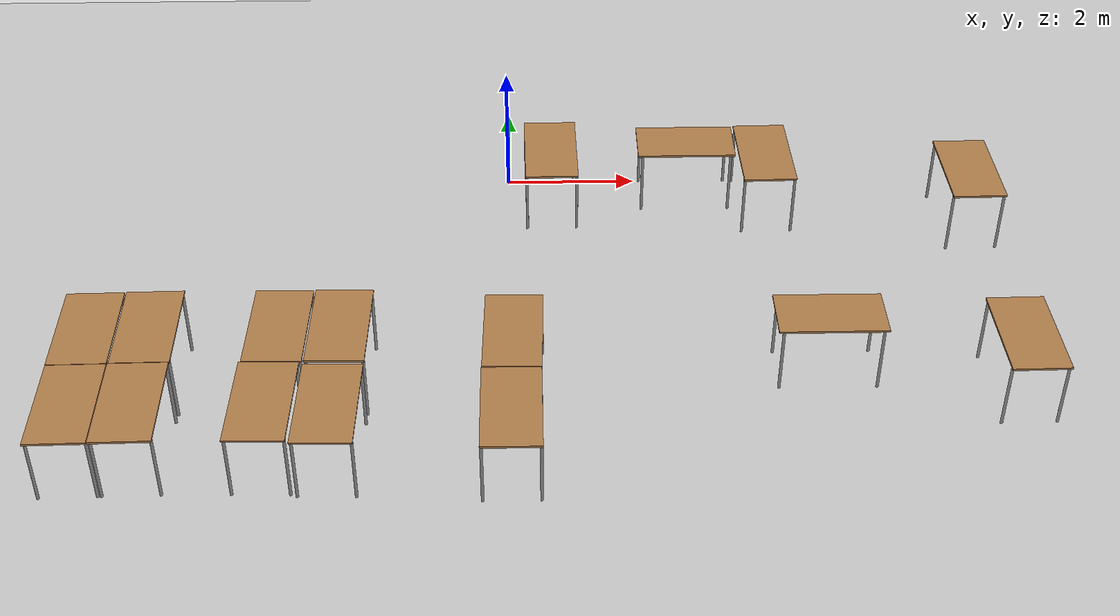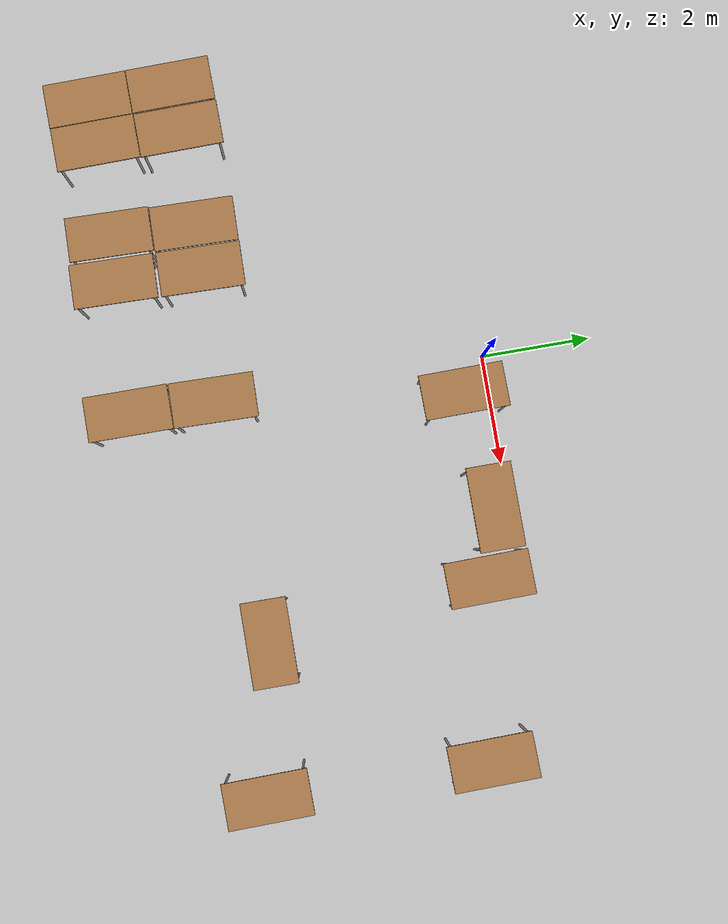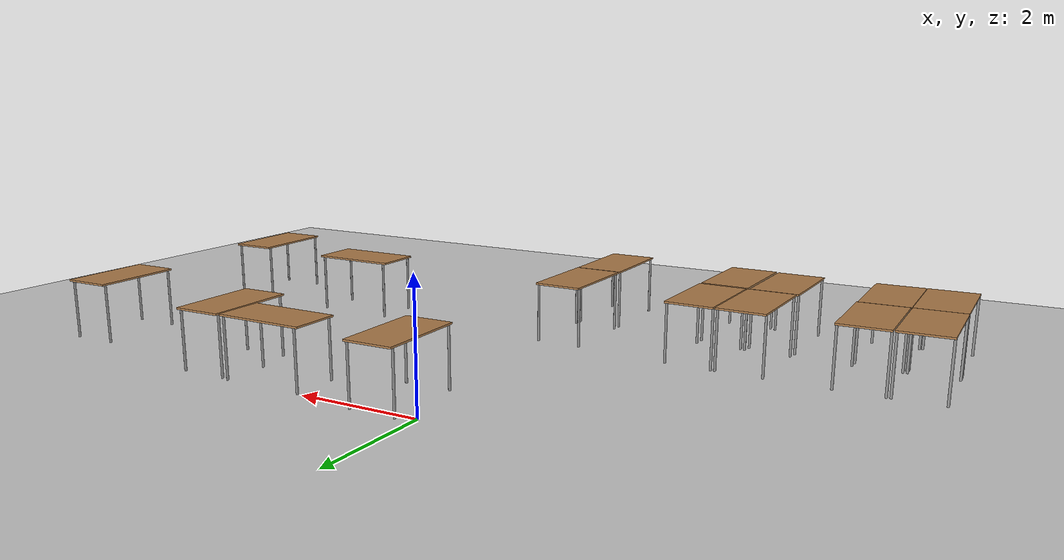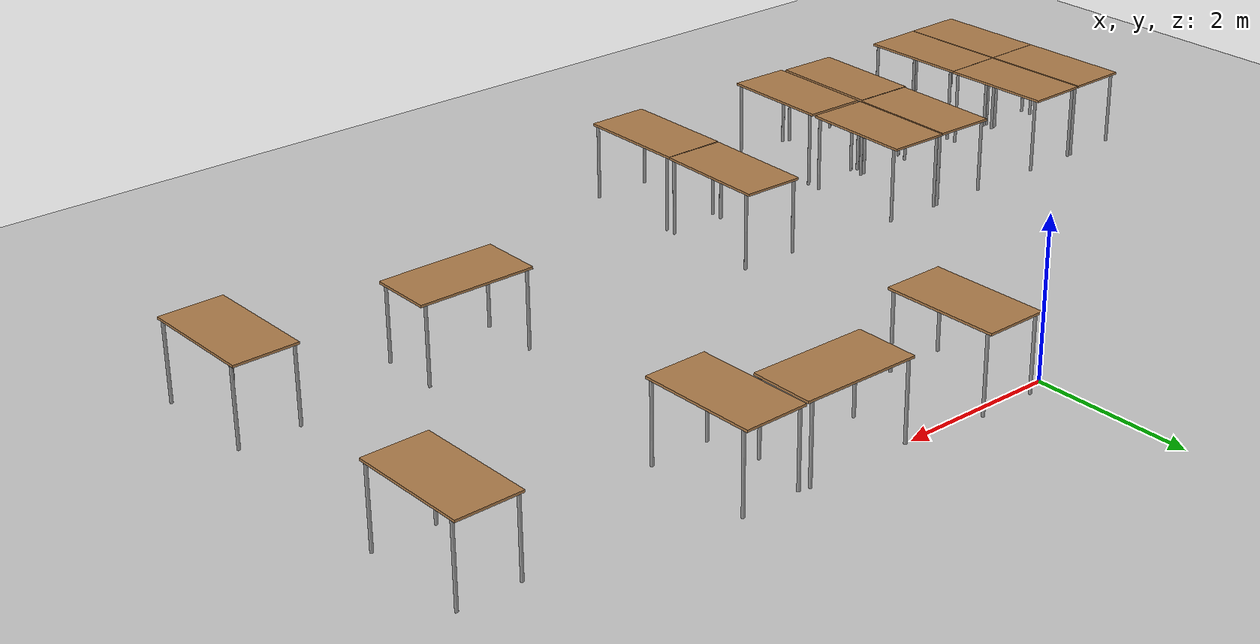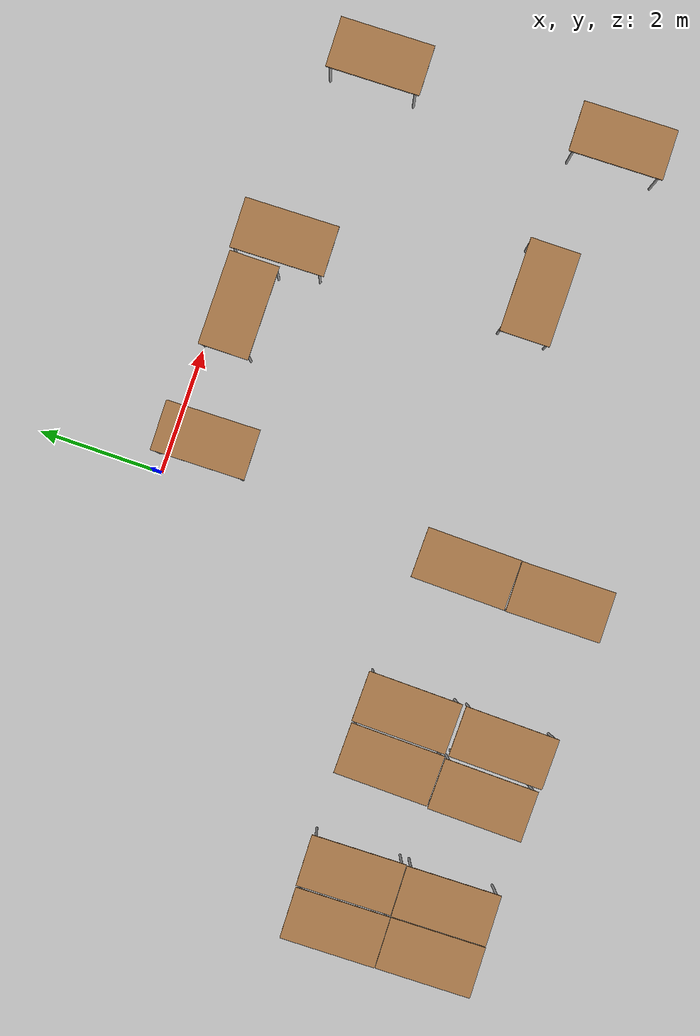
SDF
<sdf version="1.7">
 <world name="default">
  <model name="ground_plane">
   <static>1</static>
   <link name="link">
    <collision name="collision">
     <geometry><plane><normal>0 0 1</normal><size>100 100</size></plane></geometry>
     <surface>
      <contact><collide_bitmask>65535</collide_bitmask></contact>
      <friction><ode><mu>100</mu><mu2>50</mu2></ode></friction>
     </surface>
    </collision>
    <visual name="visual">
     <cast_shadows>0</cast_shadows>
     <geometry><plane><normal>0 0 1</normal><size>100 100</size></plane></geometry>
     <material>
      <script><uri>file://media/materials/scripts/gazebo.material</uri><name>Gazebo/Grey</name></script>
     </material>
    </visual>
   </link>
  </model>
  <model name="table">
   <static>1</static>
   <link name="link">
    <collision name="surface">
     <pose>0 0 1 0 -0 0</pose>
     <geometry><box><size>1.5 0.8 0.03</size></box></geometry>
     <surface><friction><ode><mu>0.6</mu><mu2>0.6</mu2></ode></friction></surface>
    </collision>
    <visual name="visual1">
     <pose>0 0 1 0 -0 0</pose>
     <geometry><box><size>1.5 0.8 0.03</size></box></geometry>
     <material>
      <script><uri>file://media/materials/scripts/gazebo.material</uri><name>Gazebo/Wood</name></script>
     </material>
    </visual>
    <collision name="front_left_leg">
     <pose>0.68 0.38 0.5 0 -0 0</pose>
     <geometry><cylinder><radius>0.02</radius><length>1</length></cylinder></geometry>
    </collision>
    <visual name="front_left_leg">
     <pose>0.68 0.38 0.5 0 -0 0</pose>
     <geometry><cylinder><radius>0.02</radius><length>1</length></cylinder></geometry>
     <material>
      <script><uri>file://media/materials/scripts/gazebo.material</uri><name>Gazebo/Grey</name></script>
     </material>
    </visual>
    <collision name="front_right_leg">
     <pose>0.68 -0.38 0.5 0 -0 0</pose>
     <geometry><cylinder><radius>0.02</radius><length>1</length></cylinder></geometry>
    </collision>
    <visual name="front_right_leg">
     <pose>0.68 -0.38 0.5 0 -0 0</pose>
     <geometry><cylinder><radius>0.02</radius><length>1</length></cylinder></geometry>
     <material>
      <script><uri>file://media/materials/scripts/gazebo.material</uri><name>Gazebo/Grey</name></script>
     </material>
    </visual>
    <collision name="back_right_leg">
     <pose>-0.68 -0.38 0.5 0 -0 0</pose>
     <geometry><cylinder><radius>0.02</radius><length>1</length></cylinder></geometry>
    </collision>
    <visual name="back_right_leg">
     <pose>-0.68 -0.38 0.5 0 -0 0</pose>
     <geometry><cylinder><radius>0.02</radius><length>1</length></cylinder></geometry>
     <material>
      <script><uri>file://media/materials/scripts/gazebo.material</uri><name>Gazebo/Grey</name></script>
     </material>
    </visual>
    <collision name="back_left_leg">
     <pose>-0.68 0.38 0.5 0 -0 0</pose>
     <geometry><cylinder><radius>0.02</radius><length>1</length></cylinder></geometry>
    </collision>
    <visual name="back_left_leg">
     <pose>-0.68 0.38 0.5 0 -0 0</pose>
     <geometry><cylinder><radius>0.02</radius><length>1</length></cylinder></geometry>
     <material>
      <script><uri>file://media/materials/scripts/gazebo.material</uri><name>Gazebo/Grey</name></script>
     </material>
    </visual>
   </link>
   <pose>2.7742 -0.37868 0 0 -0 0</pose>
  </model>
  <model name="table_clone_0_clone_6">
   <static>1</static>
   <link name="link">
    <collision name="surface">
     <pose>0 0 1 0 -0 0</pose>
     <geometry><box><size>1.5 0.8 0.03</size></box></geometry>
     <surface><friction><ode><mu>0.6</mu><mu2>0.6</mu2></ode></friction></surface>
    </collision>
    <visual name="visual1">
     <pose>0 0 1 0 -0 0</pose>
     <geometry><box><size>1.5 0.8 0.03</size></box></geometry>
     <material>
      <script><uri>file://media/materials/scripts/gazebo.material</uri><name>Gazebo/Wood</name></script>
     </material>
    </visual>
    <collision name="front_left_leg">
     <pose>0.68 0.38 0.5 0 -0 0</pose>
     <geometry><cylinder><radius>0.02</radius><length>1</length></cylinder></geometry>
    </collision>
    <visual name="front_left_leg">
     <pose>0.68 0.38 0.5 0 -0 0</pose>
     <geometry><cylinder><radius>0.02</radius><length>1</length></cylinder></geometry>
     <material>
      <script><uri>file://media/materials/scripts/gazebo.material</uri><name>Gazebo/Grey</name></script>
     </material>
    </visual>
    <collision name="front_right_leg">
     <pose>0.68 -0.38 0.5 0 -0 0</pose>
     <geometry><cylinder><radius>0.02</radius><length>1</length></cylinder></geometry>
    </collision>
    <visual name="front_right_leg">
     <pose>0.68 -0.38 0.5 0 -0 0</pose>
     <geometry><cylinder><radius>0.02</radius><length>1</length></cylinder></geometry>
     <material>
      <script><uri>file://media/materials/scripts/gazebo.material</uri><name>Gazebo/Grey</name></script>
     </material>
    </visual>
    <collision name="back_right_leg">
     <pose>-0.68 -0.38 0.5 0 -0 0</pose>
     <geometry><cylinder><radius>0.02</radius><length>1</length></cylinder></geometry>
    </collision>
    <visual name="back_right_leg">
     <pose>-0.68 -0.38 0.5 0 -0 0</pose>
     <geometry><cylinder><radius>0.02</radius><length>1</length></cylinder></geometry>
     <material>
      <script><uri>file://media/materials/scripts/gazebo.material</uri><name>Gazebo/Grey</name></script>
     </material>
    </visual>
    <collision name="back_left_leg">
     <pose>-0.68 0.38 0.5 0 -0 0</pose>
     <geometry><cylinder><radius>0.02</radius><length>1</length></cylinder></geometry>
    </collision>
    <visual name="back_left_leg">
     <pose>-0.68 0.38 0.5 0 -0 0</pose>
     <geometry><cylinder><radius>0.02</radius><length>1</length></cylinder></geometry>
     <material>
      <script><uri>file://media/materials/scripts/gazebo.material</uri><name>Gazebo/Grey</name></script>
     </material>
    </visual>
   </link>
   <pose>7.0603 -1.19412 0 0 -0 1.58908</pose>
  </model>
  <model name="table_clone_0_clone_9">
   <static>1</static>
   <link name="link">
    <collision name="surface">
     <pose>0 0 1 0 -0 0</pose>
     <geometry><box><size>1.5 0.8 0.03</size></box></geometry>
     <surface><friction><ode><mu>0.6</mu><mu2>0.6</mu2></ode></friction></surface>
    </collision>
    <visual name="visual1">
     <pose>0 0 1 0 -0 0</pose>
     <geometry><box><size>1.5 0.8 0.03</size></box></geometry>
     <material>
      <script><uri>file://media/materials/scripts/gazebo.material</uri><name>Gazebo/Wood</name></script>
     </material>
    </visual>
    <collision name="front_left_leg">
     <pose>0.68 0.38 0.5 0 -0 0</pose>
     <geometry><cylinder><radius>0.02</radius><length>1</length></cylinder></geometry>
    </collision>
    <visual name="front_left_leg">
     <pose>0.68 0.38 0.5 0 -0 0</pose>
     <geometry><cylinder><radius>0.02</radius><length>1</length></cylinder></geometry>
     <material>
      <script><uri>file://media/materials/scripts/gazebo.material</uri><name>Gazebo/Grey</name></script>
     </material>
    </visual>
    <collision name="front_right_leg">
     <pose>0.68 -0.38 0.5 0 -0 0</pose>
     <geometry><cylinder><radius>0.02</radius><length>1</length></cylinder></geometry>
    </collision>
    <visual name="front_right_leg">
     <pose>0.68 -0.38 0.5 0 -0 0</pose>
     <geometry><cylinder><radius>0.02</radius><length>1</length></cylinder></geometry>
     <material>
      <script><uri>file://media/materials/scripts/gazebo.material</uri><name>Gazebo/Grey</name></script>
     </material>
    </visual>
    <collision name="back_right_leg">
     <pose>-0.68 -0.38 0.5 0 -0 0</pose>
     <geometry><cylinder><radius>0.02</radius><length>1</length></cylinder></geometry>
    </collision>
    <visual name="back_right_leg">
     <pose>-0.68 -0.38 0.5 0 -0 0</pose>
     <geometry><cylinder><radius>0.02</radius><length>1</length></cylinder></geometry>
     <material>
      <script><uri>file://media/materials/scripts/gazebo.material</uri><name>Gazebo/Grey</name></script>
     </material>
    </visual>
    <collision name="back_left_leg">
     <pose>-0.68 0.38 0.5 0 -0 0</pose>
     <geometry><cylinder><radius>0.02</radius><length>1</length></cylinder></geometry>
    </collision>
    <visual name="back_left_leg">
     <pose>-0.68 0.38 0.5 0 -0 0</pose>
     <geometry><cylinder><radius>0.02</radius><length>1</length></cylinder></geometry>
     <material>
      <script><uri>file://media/materials/scripts/gazebo.material</uri><name>Gazebo/Grey</name></script>
     </material>
    </visual>
   </link>
   <pose>7.02703 -5.11024 0 0 -0 1.58908</pose>
  </model>
  <model name="table_clone_0_clone_clone_1">
   <static>1</static>
   <link name="link">
    <collision name="surface">
     <pose>0 0 1 0 -0 0</pose>
     <geometry><box><size>1.5 0.8 0.03</size></box></geometry>
     <surface><friction><ode><mu>0.6</mu><mu2>0.6</mu2></ode></friction></surface>
    </collision>
    <visual name="visual1">
     <pose>0 0 1 0 -0 0</pose>
     <geometry><box><size>1.5 0.8 0.03</size></box></geometry>
     <material>
      <script><uri>file://media/materials/scripts/gazebo.material</uri><name>Gazebo/Wood</name></script>
     </material>
    </visual>
    <collision name="front_left_leg">
     <pose>0.68 0.38 0.5 0 -0 0</pose>
     <geometry><cylinder><radius>0.02</radius><length>1</length></cylinder></geometry>
    </collision>
    <visual name="front_left_leg">
     <pose>0.68 0.38 0.5 0 -0 0</pose>
     <geometry><cylinder><radius>0.02</radius><length>1</length></cylinder></geometry>
     <material>
      <script><uri>file://media/materials/scripts/gazebo.material</uri><name>Gazebo/Grey</name></script>
     </material>
    </visual>
    <collision name="front_right_leg">
     <pose>0.68 -0.38 0.5 0 -0 0</pose>
     <geometry><cylinder><radius>0.02</radius><length>1</length></cylinder></geometry>
    </collision>
    <visual name="front_right_leg">
     <pose>0.68 -0.38 0.5 0 -0 0</pose>
     <geometry><cylinder><radius>0.02</radius><length>1</length></cylinder></geometry>
     <material>
      <script><uri>file://media/materials/scripts/gazebo.material</uri><name>Gazebo/Grey</name></script>
     </material>
    </visual>
    <collision name="back_right_leg">
     <pose>-0.68 -0.38 0.5 0 -0 0</pose>
     <geometry><cylinder><radius>0.02</radius><length>1</length></cylinder></geometry>
    </collision>
    <visual name="back_right_leg">
     <pose>-0.68 -0.38 0.5 0 -0 0</pose>
     <geometry><cylinder><radius>0.02</radius><length>1</length></cylinder></geometry>
     <material>
      <script><uri>file://media/materials/scripts/gazebo.material</uri><name>Gazebo/Grey</name></script>
     </material>
    </visual>
    <collision name="back_left_leg">
     <pose>-0.68 0.38 0.5 0 -0 0</pose>
     <geometry><cylinder><radius>0.02</radius><length>1</length></cylinder></geometry>
    </collision>
    <visual name="back_left_leg">
     <pose>-0.68 0.38 0.5 0 -0 0</pose>
     <geometry><cylinder><radius>0.02</radius><length>1</length></cylinder></geometry>
     <material>
      <script><uri>file://media/materials/scripts/gazebo.material</uri><name>Gazebo/Grey</name></script>
     </material>
    </visual>
   </link>
   <pose>-5.63378 -6.28762 0 0 -0 1.58908</pose>
  </model>
  <model name="table_clone_0_clone_clone_2">
   <static>1</static>
   <link name="link">
    <collision name="surface">
     <pose>0 0 1 0 -0 0</pose>
     <geometry><box><size>1.5 0.8 0.03</size></box></geometry>
     <surface><friction><ode><mu>0.6</mu><mu2>0.6</mu2></ode></friction></surface>
    </collision>
    <visual name="visual1">
     <pose>0 0 1 0 -0 0</pose>
     <geometry><box><size>1.5 0.8 0.03</size></box></geometry>
     <material>
      <script><uri>file://media/materials/scripts/gazebo.material</uri><name>Gazebo/Wood</name></script>
     </material>
    </visual>
    <collision name="front_left_leg">
     <pose>0.68 0.38 0.5 0 -0 0</pose>
     <geometry><cylinder><radius>0.02</radius><length>1</length></cylinder></geometry>
    </collision>
    <visual name="front_left_leg">
     <pose>0.68 0.38 0.5 0 -0 0</pose>
     <geometry><cylinder><radius>0.02</radius><length>1</length></cylinder></geometry>
     <material>
      <script><uri>file://media/materials/scripts/gazebo.material</uri><name>Gazebo/Grey</name></script>
     </material>
    </visual>
    <collision name="front_right_leg">
     <pose>0.68 -0.38 0.5 0 -0 0</pose>
     <geometry><cylinder><radius>0.02</radius><length>1</length></cylinder></geometry>
    </collision>
    <visual name="front_right_leg">
     <pose>0.68 -0.38 0.5 0 -0 0</pose>
     <geometry><cylinder><radius>0.02</radius><length>1</length></cylinder></geometry>
     <material>
      <script><uri>file://media/materials/scripts/gazebo.material</uri><name>Gazebo/Grey</name></script>
     </material>
    </visual>
    <collision name="back_right_leg">
     <pose>-0.68 -0.38 0.5 0 -0 0</pose>
     <geometry><cylinder><radius>0.02</radius><length>1</length></cylinder></geometry>
    </collision>
    <visual name="back_right_leg">
     <pose>-0.68 -0.38 0.5 0 -0 0</pose>
     <geometry><cylinder><radius>0.02</radius><length>1</length></cylinder></geometry>
     <material>
      <script><uri>file://media/materials/scripts/gazebo.material</uri><name>Gazebo/Grey</name></script>
     </material>
    </visual>
    <collision name="back_left_leg">
     <pose>-0.68 0.38 0.5 0 -0 0</pose>
     <geometry><cylinder><radius>0.02</radius><length>1</length></cylinder></geometry>
    </collision>
    <visual name="back_left_leg">
     <pose>-0.68 0.38 0.5 0 -0 0</pose>
     <geometry><cylinder><radius>0.02</radius><length>1</length></cylinder></geometry>
     <material>
      <script><uri>file://media/materials/scripts/gazebo.material</uri><name>Gazebo/Grey</name></script>
     </material>
    </visual>
   </link>
   <pose>-5.66381 -4.7817 0 0 -0 1.58908</pose>
  </model>
  <model name="table_clone_0_clone_clone_2_clone">
   <static>1</static>
   <link name="link">
    <collision name="surface">
     <pose>0 0 1 0 -0 0</pose>
     <geometry><box><size>1.5 0.8 0.03</size></box></geometry>
     <surface><friction><ode><mu>0.6</mu><mu2>0.6</mu2></ode></friction></surface>
    </collision>
    <visual name="visual1">
     <pose>0 0 1 0 -0 0</pose>
     <geometry><box><size>1.5 0.8 0.03</size></box></geometry>
     <material>
      <script><uri>file://media/materials/scripts/gazebo.material</uri><name>Gazebo/Wood</name></script>
     </material>
    </visual>
    <collision name="front_left_leg">
     <pose>0.68 0.38 0.5 0 -0 0</pose>
     <geometry><cylinder><radius>0.02</radius><length>1</length></cylinder></geometry>
    </collision>
    <visual name="front_left_leg">
     <pose>0.68 0.38 0.5 0 -0 0</pose>
     <geometry><cylinder><radius>0.02</radius><length>1</length></cylinder></geometry>
     <material>
      <script><uri>file://media/materials/scripts/gazebo.material</uri><name>Gazebo/Grey</name></script>
     </material>
    </visual>
    <collision name="front_right_leg">
     <pose>0.68 -0.38 0.5 0 -0 0</pose>
     <geometry><cylinder><radius>0.02</radius><length>1</length></cylinder></geometry>
    </collision>
    <visual name="front_right_leg">
     <pose>0.68 -0.38 0.5 0 -0 0</pose>
     <geometry><cylinder><radius>0.02</radius><length>1</length></cylinder></geometry>
     <material>
      <script><uri>file://media/materials/scripts/gazebo.material</uri><name>Gazebo/Grey</name></script>
     </material>
    </visual>
    <collision name="back_right_leg">
     <pose>-0.68 -0.38 0.5 0 -0 0</pose>
     <geometry><cylinder><radius>0.02</radius><length>1</length></cylinder></geometry>
    </collision>
    <visual name="back_right_leg">
     <pose>-0.68 -0.38 0.5 0 -0 0</pose>
     <geometry><cylinder><radius>0.02</radius><length>1</length></cylinder></geometry>
     <material>
      <script><uri>file://media/materials/scripts/gazebo.material</uri><name>Gazebo/Grey</name></script>
     </material>
    </visual>
    <collision name="back_left_leg">
     <pose>-0.68 0.38 0.5 0 -0 0</pose>
     <geometry><cylinder><radius>0.02</radius><length>1</length></cylinder></geometry>
    </collision>
    <visual name="back_left_leg">
     <pose>-0.68 0.38 0.5 0 -0 0</pose>
     <geometry><cylinder><radius>0.02</radius><length>1</length></cylinder></geometry>
     <material>
      <script><uri>file://media/materials/scripts/gazebo.material</uri><name>Gazebo/Grey</name></script>
     </material>
    </visual>
   </link>
   <pose>-4.83979 -4.76039 0 0 -0 1.58908</pose>
  </model>
  <model name="table_clone_0_clone_clone_2_clone_0">
   <static>1</static>
   <link name="link">
    <collision name="surface">
     <pose>0 0 1 0 -0 0</pose>
     <geometry><box><size>1.5 0.8 0.03</size></box></geometry>
     <surface><friction><ode><mu>0.6</mu><mu2>0.6</mu2></ode></friction></surface>
    </collision>
    <visual name="visual1">
     <pose>0 0 1 0 -0 0</pose>
     <geometry><box><size>1.5 0.8 0.03</size></box></geometry>
     <material>
      <script><uri>file://media/materials/scripts/gazebo.material</uri><name>Gazebo/Wood</name></script>
     </material>
    </visual>
    <collision name="front_left_leg">
     <pose>0.68 0.38 0.5 0 -0 0</pose>
     <geometry><cylinder><radius>0.02</radius><length>1</length></cylinder></geometry>
    </collision>
    <visual name="front_left_leg">
     <pose>0.68 0.38 0.5 0 -0 0</pose>
     <geometry><cylinder><radius>0.02</radius><length>1</length></cylinder></geometry>
     <material>
      <script><uri>file://media/materials/scripts/gazebo.material</uri><name>Gazebo/Grey</name></script>
     </material>
    </visual>
    <collision name="front_right_leg">
     <pose>0.68 -0.38 0.5 0 -0 0</pose>
     <geometry><cylinder><radius>0.02</radius><length>1</length></cylinder></geometry>
    </collision>
    <visual name="front_right_leg">
     <pose>0.68 -0.38 0.5 0 -0 0</pose>
     <geometry><cylinder><radius>0.02</radius><length>1</length></cylinder></geometry>
     <material>
      <script><uri>file://media/materials/scripts/gazebo.material</uri><name>Gazebo/Grey</name></script>
     </material>
    </visual>
    <collision name="back_right_leg">
     <pose>-0.68 -0.38 0.5 0 -0 0</pose>
     <geometry><cylinder><radius>0.02</radius><length>1</length></cylinder></geometry>
    </collision>
    <visual name="back_right_leg">
     <pose>-0.68 -0.38 0.5 0 -0 0</pose>
     <geometry><cylinder><radius>0.02</radius><length>1</length></cylinder></geometry>
     <material>
      <script><uri>file://media/materials/scripts/gazebo.material</uri><name>Gazebo/Grey</name></script>
     </material>
    </visual>
    <collision name="back_left_leg">
     <pose>-0.68 0.38 0.5 0 -0 0</pose>
     <geometry><cylinder><radius>0.02</radius><length>1</length></cylinder></geometry>
    </collision>
    <visual name="back_left_leg">
     <pose>-0.68 0.38 0.5 0 -0 0</pose>
     <geometry><cylinder><radius>0.02</radius><length>1</length></cylinder></geometry>
     <material>
      <script><uri>file://media/materials/scripts/gazebo.material</uri><name>Gazebo/Grey</name></script>
     </material>
    </visual>
   </link>
   <pose>-4.82384 -6.2687 0 0 -0 1.58908</pose>
  </model>
  <model name="table_clone_clone">
   <static>1</static>
   <link name="link">
    <collision name="surface">
     <pose>0 0 1 0 -0 0</pose>
     <geometry><box><size>1.5 0.8 0.03</size></box></geometry>
     <surface><friction><ode><mu>0.6</mu><mu2>0.6</mu2></ode></friction></surface>
    </collision>
    <visual name="visual1">
     <pose>0 0 1 0 -0 0</pose>
     <geometry><box><size>1.5 0.8 0.03</size></box></geometry>
     <material>
      <script><uri>file://media/materials/scripts/gazebo.material</uri><name>Gazebo/Wood</name></script>
     </material>
    </visual>
    <collision name="front_left_leg">
     <pose>0.68 0.38 0.5 0 -0 0</pose>
     <geometry><cylinder><radius>0.02</radius><length>1</length></cylinder></geometry>
    </collision>
    <visual name="front_left_leg">
     <pose>0.68 0.38 0.5 0 -0 0</pose>
     <geometry><cylinder><radius>0.02</radius><length>1</length></cylinder></geometry>
     <material>
      <script><uri>file://media/materials/scripts/gazebo.material</uri><name>Gazebo/Grey</name></script>
     </material>
    </visual>
    <collision name="front_right_leg">
     <pose>0.68 -0.38 0.5 0 -0 0</pose>
     <geometry><cylinder><radius>0.02</radius><length>1</length></cylinder></geometry>
    </collision>
    <visual name="front_right_leg">
     <pose>0.68 -0.38 0.5 0 -0 0</pose>
     <geometry><cylinder><radius>0.02</radius><length>1</length></cylinder></geometry>
     <material>
      <script><uri>file://media/materials/scripts/gazebo.material</uri><name>Gazebo/Grey</name></script>
     </material>
    </visual>
    <collision name="back_right_leg">
     <pose>-0.68 -0.38 0.5 0 -0 0</pose>
     <geometry><cylinder><radius>0.02</radius><length>1</length></cylinder></geometry>
    </collision>
    <visual name="back_right_leg">
     <pose>-0.68 -0.38 0.5 0 -0 0</pose>
     <geometry><cylinder><radius>0.02</radius><length>1</length></cylinder></geometry>
     <material>
      <script><uri>file://media/materials/scripts/gazebo.material</uri><name>Gazebo/Grey</name></script>
     </material>
    </visual>
    <collision name="back_left_leg">
     <pose>-0.68 0.38 0.5 0 -0 0</pose>
     <geometry><cylinder><radius>0.02</radius><length>1</length></cylinder></geometry>
    </collision>
    <visual name="back_left_leg">
     <pose>-0.68 0.38 0.5 0 -0 0</pose>
     <geometry><cylinder><radius>0.02</radius><length>1</length></cylinder></geometry>
     <material>
      <script><uri>file://media/materials/scripts/gazebo.material</uri><name>Gazebo/Grey</name></script>
     </material>
    </visual>
   </link>
   <pose>-3.13581 -6.28395 0 0 0 -1.59028</pose>
  </model>
  <model name="table_clone_clone_clone">
   <static>1</static>
   <link name="link">
    <collision name="surface">
     <pose>0 0 1 0 -0 0</pose>
     <geometry><box><size>1.5 0.8 0.03</size></box></geometry>
     <surface><friction><ode><mu>0.6</mu><mu2>0.6</mu2></ode></friction></surface>
    </collision>
    <visual name="visual1">
     <pose>0 0 1 0 -0 0</pose>
     <geometry><box><size>1.5 0.8 0.03</size></box></geometry>
     <material>
      <script><uri>file://media/materials/scripts/gazebo.material</uri><name>Gazebo/Wood</name></script>
     </material>
    </visual>
    <collision name="front_left_leg">
     <pose>0.68 0.38 0.5 0 -0 0</pose>
     <geometry><cylinder><radius>0.02</radius><length>1</length></cylinder></geometry>
    </collision>
    <visual name="front_left_leg">
     <pose>0.68 0.38 0.5 0 -0 0</pose>
     <geometry><cylinder><radius>0.02</radius><length>1</length></cylinder></geometry>
     <material>
      <script><uri>file://media/materials/scripts/gazebo.material</uri><name>Gazebo/Grey</name></script>
     </material>
    </visual>
    <collision name="front_right_leg">
     <pose>0.68 -0.38 0.5 0 -0 0</pose>
     <geometry><cylinder><radius>0.02</radius><length>1</length></cylinder></geometry>
    </collision>
    <visual name="front_right_leg">
     <pose>0.68 -0.38 0.5 0 -0 0</pose>
     <geometry><cylinder><radius>0.02</radius><length>1</length></cylinder></geometry>
     <material>
      <script><uri>file://media/materials/scripts/gazebo.material</uri><name>Gazebo/Grey</name></script>
     </material>
    </visual>
    <collision name="back_right_leg">
     <pose>-0.68 -0.38 0.5 0 -0 0</pose>
     <geometry><cylinder><radius>0.02</radius><length>1</length></cylinder></geometry>
    </collision>
    <visual name="back_right_leg">
     <pose>-0.68 -0.38 0.5 0 -0 0</pose>
     <geometry><cylinder><radius>0.02</radius><length>1</length></cylinder></geometry>
     <material>
      <script><uri>file://media/materials/scripts/gazebo.material</uri><name>Gazebo/Grey</name></script>
     </material>
    </visual>
    <collision name="back_left_leg">
     <pose>-0.68 0.38 0.5 0 -0 0</pose>
     <geometry><cylinder><radius>0.02</radius><length>1</length></cylinder></geometry>
    </collision>
    <visual name="back_left_leg">
     <pose>-0.68 0.38 0.5 0 -0 0</pose>
     <geometry><cylinder><radius>0.02</radius><length>1</length></cylinder></geometry>
     <material>
      <script><uri>file://media/materials/scripts/gazebo.material</uri><name>Gazebo/Grey</name></script>
     </material>
    </visual>
   </link>
   <pose>-3.07867 -4.76943 0 0 0 -1.59028</pose>
  </model>
  <model name="table_clone_clone_clone_0">
   <static>1</static>
   <link name="link">
    <collision name="surface">
     <pose>0 0 1 0 -0 0</pose>
     <geometry><box><size>1.5 0.8 0.03</size></box></geometry>
     <surface><friction><ode><mu>0.6</mu><mu2>0.6</mu2></ode></friction></surface>
    </collision>
    <visual name="visual1">
     <pose>0 0 1 0 -0 0</pose>
     <geometry><box><size>1.5 0.8 0.03</size></box></geometry>
     <material>
      <script><uri>file://media/materials/scripts/gazebo.material</uri><name>Gazebo/Wood</name></script>
     </material>
    </visual>
    <collision name="front_left_leg">
     <pose>0.68 0.38 0.5 0 -0 0</pose>
     <geometry><cylinder><radius>0.02</radius><length>1</length></cylinder></geometry>
    </collision>
    <visual name="front_left_leg">
     <pose>0.68 0.38 0.5 0 -0 0</pose>
     <geometry><cylinder><radius>0.02</radius><length>1</length></cylinder></geometry>
     <material>
      <script><uri>file://media/materials/scripts/gazebo.material</uri><name>Gazebo/Grey</name></script>
     </material>
    </visual>
    <collision name="front_right_leg">
     <pose>0.68 -0.38 0.5 0 -0 0</pose>
     <geometry><cylinder><radius>0.02</radius><length>1</length></cylinder></geometry>
    </collision>
    <visual name="front_right_leg">
     <pose>0.68 -0.38 0.5 0 -0 0</pose>
     <geometry><cylinder><radius>0.02</radius><length>1</length></cylinder></geometry>
     <material>
      <script><uri>file://media/materials/scripts/gazebo.material</uri><name>Gazebo/Grey</name></script>
     </material>
    </visual>
    <collision name="back_right_leg">
     <pose>-0.68 -0.38 0.5 0 -0 0</pose>
     <geometry><cylinder><radius>0.02</radius><length>1</length></cylinder></geometry>
    </collision>
    <visual name="back_right_leg">
     <pose>-0.68 -0.38 0.5 0 -0 0</pose>
     <geometry><cylinder><radius>0.02</radius><length>1</length></cylinder></geometry>
     <material>
      <script><uri>file://media/materials/scripts/gazebo.material</uri><name>Gazebo/Grey</name></script>
     </material>
    </visual>
    <collision name="back_left_leg">
     <pose>-0.68 0.38 0.5 0 -0 0</pose>
     <geometry><cylinder><radius>0.02</radius><length>1</length></cylinder></geometry>
    </collision>
    <visual name="back_left_leg">
     <pose>-0.68 0.38 0.5 0 -0 0</pose>
     <geometry><cylinder><radius>0.02</radius><length>1</length></cylinder></geometry>
     <material>
      <script><uri>file://media/materials/scripts/gazebo.material</uri><name>Gazebo/Grey</name></script>
     </material>
    </visual>
   </link>
   <pose>-2.25255 -4.77765 0 0 0 -1.59028</pose>
  </model>
  <model name="table_clone_clone_clone_0_clone">
   <static>1</static>
   <link name="link">
    <collision name="surface">
     <pose>0 0 1 0 -0 0</pose>
     <geometry><box><size>1.5 0.8 0.03</size></box></geometry>
     <surface><friction><ode><mu>0.6</mu><mu2>0.6</mu2></ode></friction></surface>
    </collision>
    <visual name="visual1">
     <pose>0 0 1 0 -0 0</pose>
     <geometry><box><size>1.5 0.8 0.03</size></box></geometry>
     <material>
      <script><uri>file://media/materials/scripts/gazebo.material</uri><name>Gazebo/Wood</name></script>
     </material>
    </visual>
    <collision name="front_left_leg">
     <pose>0.68 0.38 0.5 0 -0 0</pose>
     <geometry><cylinder><radius>0.02</radius><length>1</length></cylinder></geometry>
    </collision>
    <visual name="front_left_leg">
     <pose>0.68 0.38 0.5 0 -0 0</pose>
     <geometry><cylinder><radius>0.02</radius><length>1</length></cylinder></geometry>
     <material>
      <script><uri>file://media/materials/scripts/gazebo.material</uri><name>Gazebo/Grey</name></script>
     </material>
    </visual>
    <collision name="front_right_leg">
     <pose>0.68 -0.38 0.5 0 -0 0</pose>
     <geometry><cylinder><radius>0.02</radius><length>1</length></cylinder></geometry>
    </collision>
    <visual name="front_right_leg">
     <pose>0.68 -0.38 0.5 0 -0 0</pose>
     <geometry><cylinder><radius>0.02</radius><length>1</length></cylinder></geometry>
     <material>
      <script><uri>file://media/materials/scripts/gazebo.material</uri><name>Gazebo/Grey</name></script>
     </material>
    </visual>
    <collision name="back_right_leg">
     <pose>-0.68 -0.38 0.5 0 -0 0</pose>
     <geometry><cylinder><radius>0.02</radius><length>1</length></cylinder></geometry>
    </collision>
    <visual name="back_right_leg">
     <pose>-0.68 -0.38 0.5 0 -0 0</pose>
     <geometry><cylinder><radius>0.02</radius><length>1</length></cylinder></geometry>
     <material>
      <script><uri>file://media/materials/scripts/gazebo.material</uri><name>Gazebo/Grey</name></script>
     </material>
    </visual>
    <collision name="back_left_leg">
     <pose>-0.68 0.38 0.5 0 -0 0</pose>
     <geometry><cylinder><radius>0.02</radius><length>1</length></cylinder></geometry>
    </collision>
    <visual name="back_left_leg">
     <pose>-0.68 0.38 0.5 0 -0 0</pose>
     <geometry><cylinder><radius>0.02</radius><length>1</length></cylinder></geometry>
     <material>
      <script><uri>file://media/materials/scripts/gazebo.material</uri><name>Gazebo/Grey</name></script>
     </material>
    </visual>
   </link>
   <pose>0.095079 -4.92861 0 0 0 -1.59028</pose>
  </model>
  <model name="table_clone_clone_0">
   <static>1</static>
   <link name="link">
    <collision name="surface">
     <pose>0 0 1 0 -0 0</pose>
     <geometry><box><size>1.5 0.8 0.03</size></box></geometry>
     <surface><friction><ode><mu>0.6</mu><mu2>0.6</mu2></ode></friction></surface>
    </collision>
    <visual name="visual1">
     <pose>0 0 1 0 -0 0</pose>
     <geometry><box><size>1.5 0.8 0.03</size></box></geometry>
     <material>
      <script><uri>file://media/materials/scripts/gazebo.material</uri><name>Gazebo/Wood</name></script>
     </material>
    </visual>
    <collision name="front_left_leg">
     <pose>0.68 0.38 0.5 0 -0 0</pose>
     <geometry><cylinder><radius>0.02</radius><length>1</length></cylinder></geometry>
    </collision>
    <visual name="front_left_leg">
     <pose>0.68 0.38 0.5 0 -0 0</pose>
     <geometry><cylinder><radius>0.02</radius><length>1</length></cylinder></geometry>
     <material>
      <script><uri>file://media/materials/scripts/gazebo.material</uri><name>Gazebo/Grey</name></script>
     </material>
    </visual>
    <collision name="front_right_leg">
     <pose>0.68 -0.38 0.5 0 -0 0</pose>
     <geometry><cylinder><radius>0.02</radius><length>1</length></cylinder></geometry>
    </collision>
    <visual name="front_right_leg">
     <pose>0.68 -0.38 0.5 0 -0 0</pose>
     <geometry><cylinder><radius>0.02</radius><length>1</length></cylinder></geometry>
     <material>
      <script><uri>file://media/materials/scripts/gazebo.material</uri><name>Gazebo/Grey</name></script>
     </material>
    </visual>
    <collision name="back_right_leg">
     <pose>-0.68 -0.38 0.5 0 -0 0</pose>
     <geometry><cylinder><radius>0.02</radius><length>1</length></cylinder></geometry>
    </collision>
    <visual name="back_right_leg">
     <pose>-0.68 -0.38 0.5 0 -0 0</pose>
     <geometry><cylinder><radius>0.02</radius><length>1</length></cylinder></geometry>
     <material>
      <script><uri>file://media/materials/scripts/gazebo.material</uri><name>Gazebo/Grey</name></script>
     </material>
    </visual>
    <collision name="back_left_leg">
     <pose>-0.68 0.38 0.5 0 -0 0</pose>
     <geometry><cylinder><radius>0.02</radius><length>1</length></cylinder></geometry>
    </collision>
    <visual name="back_left_leg">
     <pose>-0.68 0.38 0.5 0 -0 0</pose>
     <geometry><cylinder><radius>0.02</radius><length>1</length></cylinder></geometry>
     <material>
      <script><uri>file://media/materials/scripts/gazebo.material</uri><name>Gazebo/Grey</name></script>
     </material>
    </visual>
   </link>
   <pose>0.074544 -6.44489 0 0 0 -1.57013</pose>
  </model>
  <model name="table_clone_1">
   <static>1</static>
   <link name="link">
    <collision name="surface">
     <pose>0 0 1 0 -0 0</pose>
     <geometry><box><size>1.5 0.8 0.03</size></box></geometry>
     <surface><friction><ode><mu>0.6</mu><mu2>0.6</mu2></ode></friction></surface>
    </collision>
    <visual name="visual1">
     <pose>0 0 1 0 -0 0</pose>
     <geometry><box><size>1.5 0.8 0.03</size></box></geometry>
     <material>
      <script><uri>file://media/materials/scripts/gazebo.material</uri><name>Gazebo/Wood</name></script>
     </material>
    </visual>
    <collision name="front_left_leg">
     <pose>0.68 0.38 0.5 0 -0 0</pose>
     <geometry><cylinder><radius>0.02</radius><length>1</length></cylinder></geometry>
    </collision>
    <visual name="front_left_leg">
     <pose>0.68 0.38 0.5 0 -0 0</pose>
     <geometry><cylinder><radius>0.02</radius><length>1</length></cylinder></geometry>
     <material>
      <script><uri>file://media/materials/scripts/gazebo.material</uri><name>Gazebo/Grey</name></script>
     </material>
    </visual>
    <collision name="front_right_leg">
     <pose>0.68 -0.38 0.5 0 -0 0</pose>
     <geometry><cylinder><radius>0.02</radius><length>1</length></cylinder></geometry>
    </collision>
    <visual name="front_right_leg">
     <pose>0.68 -0.38 0.5 0 -0 0</pose>
     <geometry><cylinder><radius>0.02</radius><length>1</length></cylinder></geometry>
     <material>
      <script><uri>file://media/materials/scripts/gazebo.material</uri><name>Gazebo/Grey</name></script>
     </material>
    </visual>
    <collision name="back_right_leg">
     <pose>-0.68 -0.38 0.5 0 -0 0</pose>
     <geometry><cylinder><radius>0.02</radius><length>1</length></cylinder></geometry>
    </collision>
    <visual name="back_right_leg">
     <pose>-0.68 -0.38 0.5 0 -0 0</pose>
     <geometry><cylinder><radius>0.02</radius><length>1</length></cylinder></geometry>
     <material>
      <script><uri>file://media/materials/scripts/gazebo.material</uri><name>Gazebo/Grey</name></script>
     </material>
    </visual>
    <collision name="back_left_leg">
     <pose>-0.68 0.38 0.5 0 -0 0</pose>
     <geometry><cylinder><radius>0.02</radius><length>1</length></cylinder></geometry>
    </collision>
    <visual name="back_left_leg">
     <pose>-0.68 0.38 0.5 0 -0 0</pose>
     <geometry><cylinder><radius>0.02</radius><length>1</length></cylinder></geometry>
     <material>
      <script><uri>file://media/materials/scripts/gazebo.material</uri><name>Gazebo/Grey</name></script>
     </material>
    </visual>
   </link>
   <pose>4.42862 -4.64955 0 0 -0 0</pose>
  </model>
  <model name="table_clone_2_clone_clone_clone_0">
   <static>1</static>
   <link name="link">
    <collision name="surface">
     <pose>0 0 1 0 -0 0</pose>
     <geometry><box><size>1.5 0.8 0.03</size></box></geometry>
     <surface><friction><ode><mu>0.6</mu><mu2>0.6</mu2></ode></friction></surface>
    </collision>
    <visual name="visual1">
     <pose>0 0 1 0 -0 0</pose>
     <geometry><box><size>1.5 0.8 0.03</size></box></geometry>
     <material>
      <script><uri>file://media/materials/scripts/gazebo.material</uri><name>Gazebo/Wood</name></script>
     </material>
    </visual>
    <collision name="front_left_leg">
     <pose>0.68 0.38 0.5 0 -0 0</pose>
     <geometry><cylinder><radius>0.02</radius><length>1</length></cylinder></geometry>
    </collision>
    <visual name="front_left_leg">
     <pose>0.68 0.38 0.5 0 -0 0</pose>
     <geometry><cylinder><radius>0.02</radius><length>1</length></cylinder></geometry>
     <material>
      <script><uri>file://media/materials/scripts/gazebo.material</uri><name>Gazebo/Grey</name></script>
     </material>
    </visual>
    <collision name="front_right_leg">
     <pose>0.68 -0.38 0.5 0 -0 0</pose>
     <geometry><cylinder><radius>0.02</radius><length>1</length></cylinder></geometry>
    </collision>
    <visual name="front_right_leg">
     <pose>0.68 -0.38 0.5 0 -0 0</pose>
     <geometry><cylinder><radius>0.02</radius><length>1</length></cylinder></geometry>
     <material>
      <script><uri>file://media/materials/scripts/gazebo.material</uri><name>Gazebo/Grey</name></script>
     </material>
    </visual>
    <collision name="back_right_leg">
     <pose>-0.68 -0.38 0.5 0 -0 0</pose>
     <geometry><cylinder><radius>0.02</radius><length>1</length></cylinder></geometry>
    </collision>
    <visual name="back_right_leg">
     <pose>-0.68 -0.38 0.5 0 -0 0</pose>
     <geometry><cylinder><radius>0.02</radius><length>1</length></cylinder></geometry>
     <material>
      <script><uri>file://media/materials/scripts/gazebo.material</uri><name>Gazebo/Grey</name></script>
     </material>
    </visual>
    <collision name="back_left_leg">
     <pose>-0.68 0.38 0.5 0 -0 0</pose>
     <geometry><cylinder><radius>0.02</radius><length>1</length></cylinder></geometry>
    </collision>
    <visual name="back_left_leg">
     <pose>-0.68 0.38 0.5 0 -0 0</pose>
     <geometry><cylinder><radius>0.02</radius><length>1</length></cylinder></geometry>
     <material>
      <script><uri>file://media/materials/scripts/gazebo.material</uri><name>Gazebo/Grey</name></script>
     </material>
    </visual>
   </link>
   <pose>0.672906 -0.555891 0 0 0 -1.55798</pose>
  </model>
  <model name="table_clone_3_clone_clone">
   <static>1</static>
   <link name="link">
    <collision name="surface">
     <pose>0 0 1 0 -0 0</pose>
     <geometry><box><size>1.5 0.8 0.03</size></box></geometry>
     <surface><friction><ode><mu>0.6</mu><mu2>0.6</mu2></ode></friction></surface>
    </collision>
    <visual name="visual1">
     <pose>0 0 1 0 -0 0</pose>
     <geometry><box><size>1.5 0.8 0.03</size></box></geometry>
     <material>
      <script><uri>file://media/materials/scripts/gazebo.material</uri><name>Gazebo/Wood</name></script>
     </material>
    </visual>
    <collision name="front_left_leg">
     <pose>0.68 0.38 0.5 0 -0 0</pose>
     <geometry><cylinder><radius>0.02</radius><length>1</length></cylinder></geometry>
    </collision>
    <visual name="front_left_leg">
     <pose>0.68 0.38 0.5 0 -0 0</pose>
     <geometry><cylinder><radius>0.02</radius><length>1</length></cylinder></geometry>
     <material>
      <script><uri>file://media/materials/scripts/gazebo.material</uri><name>Gazebo/Grey</name></script>
     </material>
    </visual>
    <collision name="front_right_leg">
     <pose>0.68 -0.38 0.5 0 -0 0</pose>
     <geometry><cylinder><radius>0.02</radius><length>1</length></cylinder></geometry>
    </collision>
    <visual name="front_right_leg">
     <pose>0.68 -0.38 0.5 0 -0 0</pose>
     <geometry><cylinder><radius>0.02</radius><length>1</length></cylinder></geometry>
     <material>
      <script><uri>file://media/materials/scripts/gazebo.material</uri><name>Gazebo/Grey</name></script>
     </material>
    </visual>
    <collision name="back_right_leg">
     <pose>-0.68 -0.38 0.5 0 -0 0</pose>
     <geometry><cylinder><radius>0.02</radius><length>1</length></cylinder></geometry>
    </collision>
    <visual name="back_right_leg">
     <pose>-0.68 -0.38 0.5 0 -0 0</pose>
     <geometry><cylinder><radius>0.02</radius><length>1</length></cylinder></geometry>
     <material>
      <script><uri>file://media/materials/scripts/gazebo.material</uri><name>Gazebo/Grey</name></script>
     </material>
    </visual>
    <collision name="back_left_leg">
     <pose>-0.68 0.38 0.5 0 -0 0</pose>
     <geometry><cylinder><radius>0.02</radius><length>1</length></cylinder></geometry>
    </collision>
    <visual name="back_left_leg">
     <pose>-0.68 0.38 0.5 0 -0 0</pose>
     <geometry><cylinder><radius>0.02</radius><length>1</length></cylinder></geometry>
     <material>
      <script><uri>file://media/materials/scripts/gazebo.material</uri><name>Gazebo/Grey</name></script>
     </material>
    </visual>
   </link>
   <pose>3.98071 -0.700497 0 0 0 -1.55191</pose>
  </model>
  <model name="table_clone_clone_clone_0_clone_0">
   <static>1</static>
   <link name="link">
    <collision name="surface">
     <pose>0 0 1 0 -0 0</pose>
     <geometry><box><size>1.5 0.8 0.03</size></box></geometry>
     <surface><friction><ode><mu>0.6</mu><mu2>0.6</mu2></ode></friction></surface>
    </collision>
    <visual name="visual1">
     <pose>0 0 1 0 -0 0</pose>
     <geometry><box><size>1.5 0.8 0.03</size></box></geometry>
     <material>
      <script><uri>file://media/materials/scripts/gazebo.material</uri><name>Gazebo/Wood</name></script>
     </material>
    </visual>
    <collision name="front_left_leg">
     <pose>0.68 0.38 0.5 0 -0 0</pose>
     <geometry><cylinder><radius>0.02</radius><length>1</length></cylinder></geometry>
    </collision>
    <visual name="front_left_leg">
     <pose>0.68 0.38 0.5 0 -0 0</pose>
     <geometry><cylinder><radius>0.02</radius><length>1</length></cylinder></geometry>
     <material>
      <script><uri>file://media/materials/scripts/gazebo.material</uri><name>Gazebo/Grey</name></script>
     </material>
    </visual>
    <collision name="front_right_leg">
     <pose>0.68 -0.38 0.5 0 -0 0</pose>
     <geometry><cylinder><radius>0.02</radius><length>1</length></cylinder></geometry>
    </collision>
    <visual name="front_right_leg">
     <pose>0.68 -0.38 0.5 0 -0 0</pose>
     <geometry><cylinder><radius>0.02</radius><length>1</length></cylinder></geometry>
     <material>
      <script><uri>file://media/materials/scripts/gazebo.material</uri><name>Gazebo/Grey</name></script>
     </material>
    </visual>
    <collision name="back_right_leg">
     <pose>-0.68 -0.38 0.5 0 -0 0</pose>
     <geometry><cylinder><radius>0.02</radius><length>1</length></cylinder></geometry>
    </collision>
    <visual name="back_right_leg">
     <pose>-0.68 -0.38 0.5 0 -0 0</pose>
     <geometry><cylinder><radius>0.02</radius><length>1</length></cylinder></geometry>
     <material>
      <script><uri>file://media/materials/scripts/gazebo.material</uri><name>Gazebo/Grey</name></script>
     </material>
    </visual>
    <collision name="back_left_leg">
     <pose>-0.68 0.38 0.5 0 -0 0</pose>
     <geometry><cylinder><radius>0.02</radius><length>1</length></cylinder></geometry>
    </collision>
    <visual name="back_left_leg">
     <pose>-0.68 0.38 0.5 0 -0 0</pose>
     <geometry><cylinder><radius>0.02</radius><length>1</length></cylinder></geometry>
     <material>
      <script><uri>file://media/materials/scripts/gazebo.material</uri><name>Gazebo/Grey</name></script>
     </material>
    </visual>
   </link>
   <pose>-2.28813 -6.33451 0 0 0 -1.59028</pose>
  </model>
  <model name="cardboard_box_1">
   <pose>0.006438 -3.96264 0.149 0 -0 0</pose>
   <scale>1 1 1</scale>
   <link name="link">
    <pose>0.006438 -3.96264 0.149 0 -0 0</pose>
    <velocity>0 0 0 0 -0 0</velocity>
    <acceleration>0 1.9e-05 0 -0.000128 -2e-06 0</acceleration>
    <wrench>-1e-06 3.8e-05 -1e-06 0 -0 0</wrench>
   </link>
  </model>
 </world>
</sdf>
